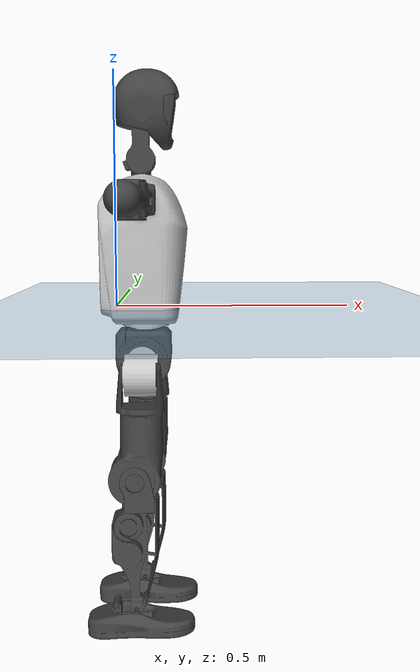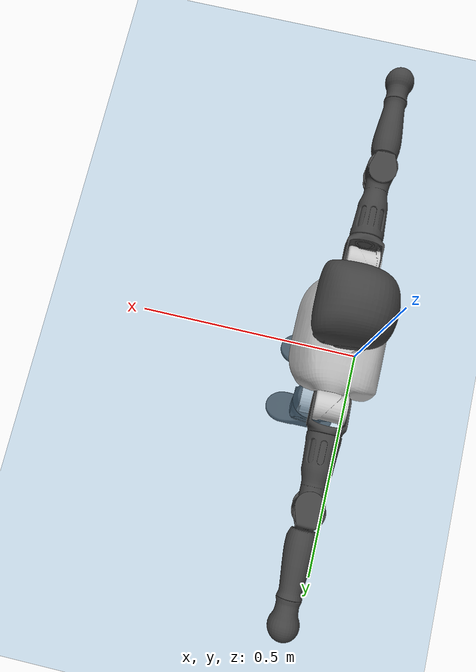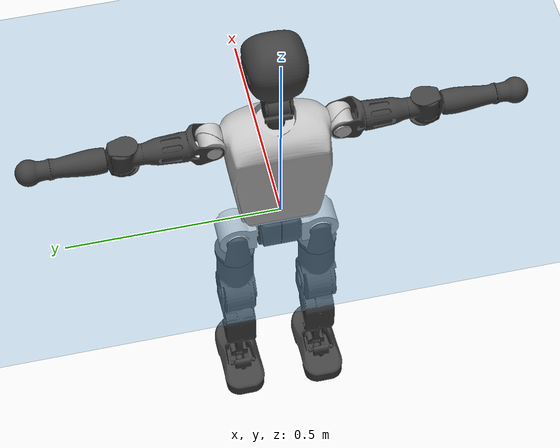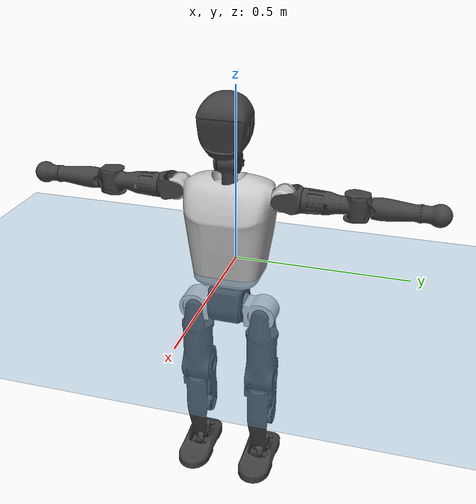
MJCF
<mujoco model="T1">
  <compiler angle="radian" assetdir="assets" balanceinertia="true" inertiafromgeom="false"/>

  <option timestep="0.005" density="1.2" viscosity="2e-05"/>

  <size nkey="1"/>

  <visual>
    <quality shadowsize="8192"/>
    <map shadowclip="0.5"/>
  </visual>

  <default>
    <default class="/">
      <joint armature="0.01" damping="0.01" frictionloss="0.1"/>
      <geom contype="0" conaffinity="0" group="1" solref="-1000 -80"/>
      <site size="0.01 0.005 0.005" group="5"/>
      <general forcelimited="true" biastype="affine" gainprm="25" biasprm="0 -25 -0.6"/>
      <default class="t1">
        <geom rgba="0.25 0.25 0.25 1"/>
        <default class="visual">
          <geom type="mesh" group="2"/>
        </default>
        <default class="collision">
          <geom group="3"/>
        </default>
        <default class="foot">
          <geom size="0.1115 0.05 0.015" type="box" condim="6" group="4" priority="1" solimp="0.015 1 0.015"/>
        </default>
        <default class="reward_collision_sphere">
          <geom group="5" rgba="1 0 0 1"/>
        </default>
      </default>
    </default>
  </default>

  <asset>
    <texture type="skybox" colorspace="auto" name="//unnamed_texture_0" builtin="gradient" rgb1="0.95 0.95 0.95" rgb2="0.95 0.95 0.95" width="100" height="600"/>
    <texture type="2d" colorspace="auto" name="texplane" builtin="checker" rgb1="0.345 0.575 0.748" rgb2="0.345 0.575 0.748" markrgb="1 1 1" width="512" height="512"/>
    <material name="MatPlane" class="/" texture="texplane" texuniform="true" texrepeat="2 2" specular="0.9"/>
    <mesh name="Trunk" class="/" file="Trunk.stl"/>
    <mesh name="H1" class="/" file="H1.stl"/>
    <mesh name="H2" class="/" file="H2.stl"/>
    <mesh name="AL1" class="/" file="AL1.stl"/>
    <mesh name="AL2" class="/" file="AL2.stl"/>
    <mesh name="AL3" class="/" file="AL3.stl"/>
    <mesh name="left_hand_link" class="/" file="left_hand_link.stl"/>
    <mesh name="AR1" class="/" file="AR1.stl"/>
    <mesh name="AR2" class="/" file="AR2.stl"/>
    <mesh name="AR3" class="/" file="AR3.stl"/>
    <mesh name="right_hand_link" class="/" file="right_hand_link.stl"/>
    <mesh name="Waist" class="/" file="Waist.stl"/>
    <mesh name="Hip_Pitch_Left" class="/" file="Hip_Pitch_Left.stl"/>
    <mesh name="Hip_Roll_Left" class="/" file="Hip_Roll_Left.stl"/>
    <mesh name="Hip_Yaw_Left" class="/" file="Hip_Yaw_Left.stl"/>
    <mesh name="Shank_Left" class="/" file="Shank_Left.stl"/>
    <mesh name="Ankle_Cross_Left" class="/" file="Ankle_Cross_Left.stl"/>
    <mesh name="left_foot_link" class="/" file="left_foot_link.stl"/>
    <mesh name="Hip_Pitch_Right" class="/" file="Hip_Pitch_Right.stl"/>
    <mesh name="Hip_Roll_Right" class="/" file="Hip_Roll_Right.stl"/>
    <mesh name="Hip_Yaw_Right" class="/" file="Hip_Yaw_Right.stl"/>
    <mesh name="Shank_Right" class="/" file="Shank_Right.stl"/>
    <mesh name="Ankle_Cross_Right" class="/" file="Ankle_Cross_Right.stl"/>
    <mesh name="right_foot_link" class="/" file="right_foot_link.stl"/>
  </asset>

  <worldbody>
    <geom name="floor" class="/" size="100 100 0.125" type="plane" group="0" material="MatPlane"/>
    <light name="toplight_shadow" class="/" pos="0 0 5" dir="0.0990148 0.0990148 -0.990148" type="directional" ambient="0.04 0.04 0.04" diffuse="0.55 0.55 0.55" specular="0.12 0.12 0.12"/>
    <light name="toplight_fill" class="/" pos="0 0 5" dir="0.0990148 0.0990148 -0.990148" type="directional" castshadow="false" ambient="0.04 0.04 0.04" diffuse="0.3 0.3 0.3" specular="0.08 0.08 0.08"/>
    <body name="trunk" childclass="t1" pos="0.000116815 0.000460128 0.000538981" quat="1 0.000417355 -6.24489e-05 -0.000229954">
      <inertial pos="0.0510491 0.000150981 0.108299" quat="0.99992 0.00373132 -0.0120672 0.00104156" mass="10.3499" diaginertia="0.0646619 0.0543789 0.0649863"/>
      <joint name="//unnamed_joint_0" type="free" armature="0" damping="0" frictionloss="0"/>
      <geom name="//unnamed_geom_1" class="visual" rgba="0.76 0.76 0.76 1" mesh="Trunk"/>
      <geom name="//unnamed_geom_2" class="collision" size="0.0720645 0.096086 0.144129" pos="0.0553721 0 0.123222" type="box"/>
      <geom name="//unnamed_geom_3" class="reward_collision_sphere" size="0.110499" pos="0.0553721 0 0.102685"/>
      <geom name="//unnamed_geom_4" class="reward_collision_sphere" size="0.0144129" pos="0.0553721 0.0792935 0"/>
      <geom name="//unnamed_geom_5" class="reward_collision_sphere" size="0.0144129" pos="0.0553721 -0.0792935 0"/>
      <geom name="//unnamed_geom_6" class="reward_collision_sphere" size="0.0144129" pos="0.0553721 0.0998166 0.184832"/>
      <geom name="//unnamed_geom_7" class="reward_collision_sphere" size="0.0144129" pos="0.0553721 -0.0998166 0.184832"/>
      <site name="imu" pos="0.00392052 2.09539e-05 -0.00350176" size="0.0096086"/>
      <camera name="track" pos="0 -1.86573 0" quat="0.707107 0.707107 0 0" mode="trackcom"/>
      <camera name="ego_camera" pos="0.11259 0 0.431276" quat="-0.5 -0.5 0.5 0.5"/>
      <body name="H1" pos="0.0555315 -0.000375932 0.24725" quat="1 -9.08157e-05 -3.47896e-05 -8.45484e-05">
        <inertial pos="-0.000896928 -0.00202399 0.0589873" quat="0.764581 -0.0139206 0.00251295 0.644372" mass="0.394912" diaginertia="0.000161316 0.00015562 0.000171877"/>
        <joint name="AAHead_yaw" pos="0 0 0" axis="-0.000473142 0.000929908 0.999999" range="-1.55379 1.57766" armature="0.0106142" damping="0.0122549" frictionloss="0.105387"/>
        <geom name="//unnamed_geom_8" class="visual" mesh="H1"/>
        <body name="H2" pos="0.000159762 -0.00276126 0.0644304" quat="1 0.000422145 -0.000144426 0.000180082">
          <inertial pos="0.00766386 -0.00107488 0.0988966" quat="0.988607 0.101599 -0.073307 -0.0834224" mass="0.558113" diaginertia="0.00137776 0.00132753 0.0019771"/>
          <joint name="Head_pitch" pos="0 0 0" axis="-0.00279226 -0.999984 -0.00484912" range="-1.21382 0.364592" armature="0.00960199" damping="0" frictionloss="0.0971079"/>
          <geom name="//unnamed_geom_9" class="visual" mesh="H2"/>
          <geom name="//unnamed_geom_10" class="collision" size="0.0768688" pos="0.00922868 0 0.112953"/>
          <geom name="//unnamed_geom_11" class="reward_collision_sphere" size="0.0864774" pos="0.0184574 0 0.102685"/>
        </body>
      </body>
      <body name="AL1" pos="0.0536421 0.10057 0.222978" quat="0.999999 0.000697383 0.00139116 -0.000257096">
        <inertial pos="-0.00125968 0.0421969 -0.000452981" quat="0.50367 0.496262 -0.504075 0.495932" mass="0.47265" diaginertia="0.000917725 0.000891561 0.000328833"/>
        <joint name="Left_Shoulder_Pitch" pos="0 0 0" axis="-0.00324299 0.999969 -0.00715371" stiffness="0.00308276" range="-3.30298 1.26672" armature="0.00967931" damping="0" frictionloss="0.0943013"/>
        <geom name="//unnamed_geom_12" class="visual" rgba="0.76 0.76 0.76 1" mesh="AL1"/>
        <body name="AL2" pos="-0.000539327 0.043256 -0.000775497" quat="1 0.000357873 7.43167e-05 -0.00018409">
          <inertial pos="0.00434656 0.0373819 0.000200025" quat="0.488036 0.51153 -0.488088 0.511788" mass="0.141255" diaginertia="0.000269214 0.000242719 0.000202577"/>
          <joint name="Left_Shoulder_Roll" pos="0 0 0" axis="-0.999998 0.000679754 0.0020425" range="-1.58317 1.74428" armature="0.0106772" damping="0.00865579" frictionloss="0.0954756"/>
          <geom name="//unnamed_geom_13" class="visual" mesh="AL2"/>
          <body name="AL3" pos="-0.000138584 0.0569762 -0.000252802" quat="1 0.000366915 0.000303102 3.26995e-05">
            <inertial pos="0.00136751 0.0774697 -0.00124207" quat="0.706493 0.707719 -0.000121003 0.000884449" mass="0.86926" diaginertia="0.0086548 0.00894142 0.000689391"/>
            <joint name="Left_Elbow_Pitch" pos="0 0 0" axis="0.000376785 -0.999994 -0.00338287" range="-2.32001 2.28758" armature="0.0108538" damping="0.0101935" frictionloss="0.0953593"/>
            <geom name="//unnamed_geom_14" class="visual" mesh="AL3"/>
            <geom name="//unnamed_geom_15" class="collision" size="0.0288258 0.0720645" pos="0 0.0466433 0" quat="0.707105 0.707108 0 0" type="cylinder"/>
            <geom name="//unnamed_geom_16" class="reward_collision_sphere" size="0.034591"/>
            <body name="left_hand_link" pos="0.00143734 0.137037 0.00015836" quat="0.999999 -0.000112705 -0.000915456 -0.00058763">
              <inertial pos="-0.00229793 0.101499 0.000246458" quat="0.705294 0.708913 0.0014974 -0.000371882" mass="0.291485" diaginertia="0.00533532 0.00568067 0.000251195"/>
              <joint name="Left_Elbow_Yaw" pos="0 0 0" axis="-0.000462997 -0.000217324 1" stiffness="0.000560589" range="-2.44885 -0.043962" armature="0.00955802" damping="0.0094761" frictionloss="0.0950911"/>
              <geom name="//unnamed_geom_17" class="visual" mesh="left_hand_link"/>
              <geom name="//unnamed_geom_18" class="collision" size="0.0288258 0.0840753" pos="0 0.121272 0" quat="0.707105 0.707108 0 0" type="cylinder"/>
              <geom name="//unnamed_geom_19" class="reward_collision_sphere" size="0.048043"/>
              <geom name="//unnamed_geom_20" class="reward_collision_sphere" size="0.0336301" pos="0 0.102615 0"/>
              <geom name="//unnamed_geom_21" class="reward_collision_sphere" size="0.0336301" pos="0 0.200566 0"/>
            </body>
          </body>
        </body>
      </body>
      <body name="AR1" pos="0.0516699 -0.100031 0.223748" quat="1 0.000349489 0.000743837 -0.000382922">
        <inertial pos="-0.00117431 -0.044715 0.000456693" quat="0.504685 0.49572 -0.503959 0.495561" mass="0.454765" diaginertia="0.00090325 0.000889929 0.000323662"/>
        <joint name="Right_Shoulder_Pitch" pos="0 0 0" axis="0.00478153 -0.999932 0.0106614" range="-1.23207 3.31746" armature="0.010426" damping="0.0143494" frictionloss="0.0990595"/>
        <geom name="//unnamed_geom_22" class="visual" rgba="0.76 0.76 0.76 1" mesh="AR1"/>
        <body name="AR2" pos="0.00178277 -0.0422215 1.37732e-05" quat="0.999999 -0.000144348 0.000813762 -0.000784593">
          <inertial pos="0.00335147 -0.0348023 0.00126947" quat="0.511978 0.489597 -0.50858 0.489407" mass="0.13835" diaginertia="0.000268066 0.000250001 0.000203319"/>
          <joint name="Right_Shoulder_Roll" pos="0 0 0" axis="-0.999978 0.00321956 -0.00574316" range="-1.76011 1.55003" armature="0.00945285" damping="0.0038201" frictionloss="0.108022"/>
          <geom name="//unnamed_geom_23" class="visual" mesh="AR2"/>
          <body name="AR3" pos="-0.000275271 -0.0579198 -0.00255116" quat="1 5.79434e-07 -1.09098e-06 -9.41997e-07">
            <inertial pos="0.000109556 -0.0817246 0.00094318" quat="0.710402 0.703752 -0.0074278 0.00247209" mass="0.904805" diaginertia="0.00859348 0.00911863 0.000723758"/>
            <joint name="Right_Elbow_Pitch" pos="0 0 0" axis="-0.00655828 0.999965 -0.00514444" range="-2.30718 2.26915" armature="0.00856203" damping="0.00923321" frictionloss="0.0978332"/>
            <geom name="//unnamed_geom_24" class="visual" mesh="AR3"/>
            <geom name="//unnamed_geom_25" class="collision" size="0.0288258 0.0720645" pos="0 -0.0466433 0" quat="0.707105 0.707108 0 0" type="cylinder"/>
            <geom name="//unnamed_geom_26" class="reward_collision_sphere" size="0.034591"/>
            <body name="right_hand_link" pos="-0.000710221 -0.137231 -0.00100296" quat="1 0.000514435 0.000183241 0.000177141">
              <inertial pos="0.000116802 -0.101404 0.00316665" quat="0.706295 0.707918 0.000106983 -0.000110238" mass="0.292975" diaginertia="0.00546864 0.00582589 0.000246841"/>
              <joint name="Right_Elbow_Yaw" pos="0 0 0" axis="0.000978007 -0.00134576 0.999999" range="-0.00880261 2.44555" armature="0.0105428" damping="0" frictionloss="0.100398"/>
              <geom name="//unnamed_geom_27" class="visual" mesh="right_hand_link"/>
              <geom name="//unnamed_geom_28" class="collision" size="0.0288258 0.0840753" pos="0 -0.121272 0" quat="0.707105 0.707108 0 0" type="cylinder"/>
              <geom name="//unnamed_geom_29" class="reward_collision_sphere" size="0.048043"/>
              <geom name="//unnamed_geom_30" class="reward_collision_sphere" size="0.0336301" pos="0 -0.102615 0"/>
              <geom name="//unnamed_geom_31" class="reward_collision_sphere" size="0.0336301" pos="0 -0.200566 0"/>
            </body>
          </body>
        </body>
      </body>
      <body name="Waist" pos="0.058027 -0.00279728 -0.115991" quat="1 -5.05048e-05 -4.61783e-05 -0.000183736">
        <inertial pos="0.000430279 0.00019819 0.00737218" quat="0.983542 0.00852858 -0.180357 0.0065793" mass="2.2215" diaginertia="0.00348795 0.00360382 0.00525419"/>
        <joint name="Waist" pos="0 0 0" axis="-0.00468598 -0.00849516 0.999953" range="-1.57549 1.53303" armature="0.00974886" damping="0.0115427" frictionloss="0.104389"/>
        <geom name="//unnamed_geom_32" class="visual" mesh="Waist"/>
        <body name="Hip_Pitch_Left" pos="0.00132399 0.099119 -7.29769e-05" quat="1 0.000297608 -0.000178256 0.000307961">
          <inertial pos="0.000506633 -0.00685257 -0.0192632" quat="0.974968 0.221753 0.0154508 0.00485864" mass="0.904474" diaginertia="0.00121094 0.00106511 0.00142663"/>
          <joint name="Left_Hip_Pitch" pos="0 0 0" axis="-0.013873 0.999895 -0.00427207" range="-1.79686 1.61641" armature="0.00948473" damping="0.00104677" frictionloss="0.0958159"/>
          <geom name="//unnamed_geom_33" class="visual" rgba="0.76 0.76 0.76 1" mesh="Hip_Pitch_Left"/>
          <body name="Hip_Roll_Left" pos="0.00119907 0.00231959 -0.0196798" quat="0.999999 -0.00104432 -0.000454191 -0.000872017">
            <inertial pos="-0.000212511 -0.000227352 -0.0553226" quat="0.710511 -0.00561411 -0.00763797 0.703622" mass="0.333633" diaginertia="0.00116014 0.0010451 0.000569587"/>
            <joint name="Left_Hip_Roll" pos="0 0 0" axis="-0.999958 0.00819732 0.00407598" stiffness="0.00278901" range="-1.58513 0.207334" armature="0.00986278" damping="0.0105011" frictionloss="0.0979868"/>
            <geom name="//unnamed_geom_34" class="visual" mesh="Hip_Roll_Left"/>
            <geom name="//unnamed_geom_35" class="reward_collision_sphere" size="0.0528473"/>
            <body name="Hip_Yaw_Left" pos="-0.000120584 -0.000215949 -0.0839144" quat="1 1.53553e-05 -5.92407e-05 6.3991e-05">
              <inertial pos="-0.00563304 -0.00138512 -0.0917596" quat="0.694559 -0.0382409 -0.0217529 0.718089" mass="1.89372" diaginertia="0.017083 0.0174274 0.00288699"/>
              <joint name="Left_Hip_Yaw" pos="0 0 0" axis="-0.000169084 -0.00235842 -0.999997" range="-1.02826 1.00552" armature="0.00957001" damping="0.00608117" frictionloss="0.0985892"/>
              <geom name="//unnamed_geom_36" class="visual" mesh="Hip_Yaw_Left"/>
              <geom name="//unnamed_geom_37" class="collision" size="0.048043 0.0768688" type="cylinder"/>
              <body name="Shank_Left" pos="-0.0111578 -0.00156262 -0.137369" quat="1 -1.77844e-05 0.000158298 9.80088e-05">
                <inertial pos="-0.00460641 -0.000581738 -0.128277" quat="0.997625 0.00545212 -0.0179235 0.0662763" mass="1.53272" diaginertia="0.0232839 0.0244579 0.00206902"/>
                <joint name="Left_Knee_Pitch" pos="0 0 0" axis="0.00331793 0.99998 0.00538858" range="-0.0215174 2.34844" armature="0.0105433" damping="0.00290623" frictionloss="0.0999229"/>
                <geom name="//unnamed_geom_38" class="visual" mesh="Shank_Left"/>
                <geom name="//unnamed_geom_39" class="collision" size="0.048043 0.0720645" pos="0 0 -0.123222" type="cylinder"/>
                <geom name="//unnamed_geom_40" class="reward_collision_sphere" size="0.0624559"/>
                <body name="Ankle_Cross_Left" pos="0.000523941 0.00091314 -0.289329" quat="0.999999 -0.000739828 -0.000653789 -0.00026753">
                  <inertial pos="-0.00264831 -0.00220077 -0.0085322" quat="0.442431 0.553189 0.547215 0.445861" mass="0.0644705" diaginertia="1.94327e-05 1.84593e-05 1.30275e-05"/>
                  <joint name="Left_Ankle_Pitch" pos="0 0 0" axis="0.000657141 0.999994 0.00352281" range="-0.871175 0.328948" armature="0.0101937" damping="0.00669357" frictionloss="0.0986471"/>
                  <geom name="//unnamed_geom_41" class="visual" mesh="Ankle_Cross_Left"/>
                  <body name="left_foot_link" pos="-0.001665 -0.00230645 -0.0118704" quat="1 3.28237e-05 1.65476e-06 0.000157127">
                    <inertial pos="0.00161491 -0.000523201 -0.00686809" quat="-0.00339849 0.619128 -0.000766998 0.785282" mass="0.617608" diaginertia="0.00183626 0.00169676 0.00255166"/>
                    <joint name="Left_Ankle_Roll" pos="0 0 0" axis="-1 -0.000183712 0.000248283" stiffness="0.00201224" range="-0.43326 0.443446" armature="0.00862522" damping="0.00920913" frictionloss="0.0975633"/>
                    <geom name="//unnamed_geom_42" class="visual" mesh="left_foot_link"/>
                    <geom name="left_foot" class="foot" size="0.110027 0.0480609 0.013846" pos="0.00922868 0 -0.0154027"/>
                    <geom name="//unnamed_geom_44" class="reward_collision_sphere" size="0.0499647" pos="0.00922868 0 -0.0154027"/>
                    <geom name="//unnamed_geom_45" class="reward_collision_sphere" size="0.0288258" pos="0.0876725 -0.0214559 -0.0154027"/>
                    <geom name="//unnamed_geom_46" class="reward_collision_sphere" size="0.0288258" pos="-0.0646008 -0.0214559 -0.0154027"/>
                    <site name="left_foot" class="foot" pos="0.00922868 0 -0.0154027" size="0.0096086"/>
                  </body>
                </body>
              </body>
            </body>
          </body>
        </body>
        <body name="Hip_Pitch_Right" pos="-0.00181916 -0.0996816 -0.000372921" quat="0.999999 -0.000453022 0.000674701 0.00120698">
          <inertial pos="0.000558043 0.00448216 -0.0183601" quat="0.973429 -0.228474 0.0148014 -0.00406032" mass="0.883519" diaginertia="0.00117628 0.00101154 0.00140577"/>
          <joint name="Right_Hip_Pitch" pos="0 0 0" axis="-0.0037962 -0.999993 -0.000446165" range="-1.5877 1.80343" armature="0.00989961" damping="0.0128152" frictionloss="0.107229"/>
          <geom name="//unnamed_geom_47" class="visual" rgba="0.76 0.76 0.76 1" mesh="Hip_Pitch_Right"/>
          <body name="Hip_Roll_Right" pos="-0.000615088 0.00123434 -0.0192885" quat="1 7.18465e-05 0.000120702 0.000115831">
            <inertial pos="-0.000930075 0.00226746 -0.0573975" quat="0.709082 -0.00447281 -0.0080493 0.705066" mass="0.338119" diaginertia="0.00116502 0.00105882 0.000581095"/>
            <joint name="Right_Hip_Roll" pos="0 0 0" axis="-0.999997 -0.00139541 0.00200463" stiffness="0.00142385" range="-0.21074 1.56668" armature="0.0092654" damping="0.00953639" frictionloss="0.0975457"/>
            <geom name="//unnamed_geom_48" class="visual" mesh="Hip_Roll_Right"/>
            <geom name="//unnamed_geom_49" class="reward_collision_sphere" size="0.0528473"/>
            <body name="Hip_Yaw_Right" pos="-0.000257491 -0.000714367 -0.0825925" quat="1 0.00038026 0.000180537 7.46371e-05">
              <inertial pos="-0.0061847 -0.000647727 -0.0925877" quat="0.714453 -0.0315738 -0.0336253 0.698162" mass="1.8915" diaginertia="0.0173805 0.0177277 0.00300209"/>
              <joint name="Right_Hip_Yaw" pos="0 0 0" axis="-5.36805e-05 -0.00572935 -0.999984" stiffness="0.00461136" range="-0.988868 0.971593" armature="0.00840977" damping="0.0156634" frictionloss="0.106385"/>
              <geom name="//unnamed_geom_50" class="visual" mesh="Hip_Yaw_Right"/>
              <geom name="//unnamed_geom_51" class="collision" size="0.048043 0.0768688" type="cylinder"/>
              <body name="Shank_Right" pos="-0.0135452 0.00174657 -0.137695" quat="0.999999 -0.00105008 4.88014e-05 4.75941e-05">
                <inertial pos="-0.00570423 0.000998931 -0.123673" quat="0.999246 -0.00311911 -0.0262288 -0.0284579" mass="1.56307" diaginertia="0.0235523 0.0245438 0.00231602"/>
                <joint name="Right_Knee_Pitch" pos="0 0 0" axis="-0.00388089 -0.999974 -0.00607716" range="-2.30907 -0.0363331" armature="0.00963944" damping="0.0114271" frictionloss="0.100878"/>
                <geom name="//unnamed_geom_52" class="visual" mesh="Shank_Right"/>
                <geom name="//unnamed_geom_53" class="collision" size="0.048043 0.0720645" pos="0 0 -0.123222" type="cylinder"/>
                <geom name="//unnamed_geom_54" class="reward_collision_sphere" size="0.0624559"/>
                <body name="Ankle_Cross_Right" pos="0.000444776 -0.0023589 -0.287893" quat="0.999999 0.000260399 -0.000237725 0.00119839">
                  <inertial pos="-0.00241921 0.00117916 -0.00708595" quat="0.443127 0.551678 0.551339 0.441945" mass="0.0651608" diaginertia="1.92174e-05 1.81678e-05 1.27107e-05"/>
                  <joint name="Right_Ankle_Pitch" pos="0 0 0" axis="0.0071642 -0.999973 0.00187203" stiffness="0.00221042" range="-0.382883 0.878619" armature="0.00982687" damping="0.00933948" frictionloss="0.0954981"/>
                  <geom name="//unnamed_geom_55" class="visual" mesh="Ankle_Cross_Right"/>
                  <body name="right_foot_link" pos="0.000467466 -0.00287179 -0.0117352" quat="1 8.65854e-05 2.47838e-05 0.000207077">
                    <inertial pos="-0.000690759 -0.00121391 -0.0108578" quat="0.00359157 0.62192 0.00106552 0.783072" mass="0.616452" diaginertia="0.00182098 0.0016838 0.0024818"/>
                    <joint name="Right_Ankle_Roll" pos="0 0 0" axis="-0.999998 0.00199137 0.000275273" range="-0.388545 0.443409" armature="0.0104086" damping="0.00725517" frictionloss="0.0924299"/>
                    <geom name="//unnamed_geom_56" class="visual" mesh="right_foot_link"/>
                    <geom name="right_foot" class="foot" size="0.090679 0.047459 0.0137109" pos="0.00922868 0 -0.0154027"/>
                    <geom name="//unnamed_geom_58" class="reward_collision_sphere" size="0.0384344"/>
                    <geom name="//unnamed_geom_59" class="reward_collision_sphere" size="0.0288258" pos="0.00922868 0 -0.0154027"/>
                    <geom name="//unnamed_geom_60" class="reward_collision_sphere" size="0.0288258" pos="0.0876725 0.0214559 -0.0154027"/>
                    <geom name="//unnamed_geom_61" class="reward_collision_sphere" size="0.0288258" pos="-0.0646008 0.0214559 -0.0154027"/>
                    <site name="right_foot" class="foot" pos="0.00922868 0 -0.0154027" size="0.0096086"/>
                  </body>
                </body>
              </body>
            </body>
          </body>
        </body>
      </body>
    </body>
  </worldbody>

  <contact>
    <pair class="/" geom1="floor" geom2="left_foot" name="//unnamed_contact_0"/>
    <pair class="/" geom1="floor" geom2="right_foot" name="//unnamed_contact_1"/>
  </contact>

  <actuator>
    <general name="AAHead_yaw" class="/" joint="AAHead_yaw" forcerange="-6.74589 6.74589" gainprm="24.5153" biasprm="0 -24.5153 -0.585899"/>
    <general name="Head_pitch" class="/" joint="Head_pitch" forcerange="-6.88527 6.88527" gainprm="24.5153" biasprm="0 -24.5153 -0.585899"/>
    <general name="Left_Shoulder_Pitch" class="/" joint="Left_Shoulder_Pitch" forcerange="-17.4134 17.4134" gainprm="24.5153" biasprm="0 -24.5153 -0.585899"/>
    <general name="Left_Shoulder_Roll" class="/" joint="Left_Shoulder_Roll" forcerange="-18.2654 18.2654" gainprm="24.5153" biasprm="0 -24.5153 -0.585899"/>
    <general name="Left_Elbow_Pitch" class="/" joint="Left_Elbow_Pitch" forcerange="-17.0393 17.0393" gainprm="24.5153" biasprm="0 -24.5153 -0.585899"/>
    <general name="Left_Elbow_Yaw" class="/" joint="Left_Elbow_Yaw" forcerange="-17.4396 17.4396" gainprm="24.5153" biasprm="0 -24.5153 -0.585899"/>
    <general name="Right_Shoulder_Pitch" class="/" joint="Right_Shoulder_Pitch" forcerange="-17.4479 17.4479" gainprm="24.5153" biasprm="0 -24.5153 -0.585899"/>
    <general name="Right_Shoulder_Roll" class="/" joint="Right_Shoulder_Roll" forcerange="-17.9887 17.9887" gainprm="24.5153" biasprm="0 -24.5153 -0.585899"/>
    <general name="Right_Elbow_Pitch" class="/" joint="Right_Elbow_Pitch" forcerange="-16.775 16.775" gainprm="24.5153" biasprm="0 -24.5153 -0.585899"/>
    <general name="Right_Elbow_Yaw" class="/" joint="Right_Elbow_Yaw" forcerange="-17.7877 17.7877" gainprm="24.5153" biasprm="0 -24.5153 -0.585899"/>
    <general name="Waist" class="/" joint="Waist" forcerange="-27.223 27.223" gainprm="24.5153" biasprm="0 -24.5153 -0.585899"/>
    <general name="Left_Hip_Pitch" class="/" joint="Left_Hip_Pitch" forcerange="-44.8146 44.8146" gainprm="24.5153" biasprm="0 -24.5153 -0.585899"/>
    <general name="Left_Hip_Roll" class="/" joint="Left_Hip_Roll" forcerange="-28.8627 28.8627" gainprm="24.5153" biasprm="0 -24.5153 -0.585899"/>
    <general name="Left_Hip_Yaw" class="/" joint="Left_Hip_Yaw" forcerange="-29.3674 29.3674" gainprm="24.5153" biasprm="0 -24.5153 -0.585899"/>
    <general name="Left_Knee_Pitch" class="/" joint="Left_Knee_Pitch" forcerange="-53.9579 53.9579" gainprm="24.5153" biasprm="0 -24.5153 -0.585899"/>
    <general name="Left_Ankle_Pitch" class="/" joint="Left_Ankle_Pitch" forcerange="-20.9637 20.9637" gainprm="24.5153" biasprm="0 -24.5153 -0.585899"/>
    <general name="Left_Ankle_Roll" class="/" joint="Left_Ankle_Roll" forcerange="-13.0673 13.0673" gainprm="24.5153" biasprm="0 -24.5153 -0.585899"/>
    <general name="Right_Hip_Pitch" class="/" joint="Right_Hip_Pitch" forcerange="-43.6221 43.6221" gainprm="24.5153" biasprm="0 -24.5153 -0.585899"/>
    <general name="Right_Hip_Roll" class="/" joint="Right_Hip_Roll" forcerange="-27.2444 27.2444" gainprm="24.5153" biasprm="0 -24.5153 -0.585899"/>
    <general name="Right_Hip_Yaw" class="/" joint="Right_Hip_Yaw" forcerange="-31.2345 31.2345" gainprm="24.5153" biasprm="0 -24.5153 -0.585899"/>
    <general name="Right_Knee_Pitch" class="/" joint="Right_Knee_Pitch" forcerange="-55.6707 55.6707" gainprm="24.5153" biasprm="0 -24.5153 -0.585899"/>
    <general name="Right_Ankle_Pitch" class="/" joint="Right_Ankle_Pitch" forcerange="-19.1138 19.1138" gainprm="24.5153" biasprm="0 -24.5153 -0.585899"/>
    <general name="Right_Ankle_Roll" class="/" joint="Right_Ankle_Roll" forcerange="-14.5124 14.5124" gainprm="24.5153" biasprm="0 -24.5153 -0.585899"/>
  </actuator>

  <sensor>
    <gyro site="imu" name="imu_angular_velocity"/>
    <velocimeter site="imu" name="imu_linear_velocity"/>
    <framelinvel objtype="site" objname="left_foot" name="left_foot_global_linear_velocity"/>
    <framelinvel objtype="site" objname="right_foot" name="right_foot_global_linear_velocity"/>
  </sensor>

  <keyframe>
    <key name="home" qpos="0 0 0.6385 1 0 0 0 0 0 0 1.4 0 -0.4 0 -1.4 0 0.4 0 -0.4 0 0 0.8 -0.4 0 0.4 0 0 -0.8 0.4 0"/>
  </keyframe>
</mujoco>
